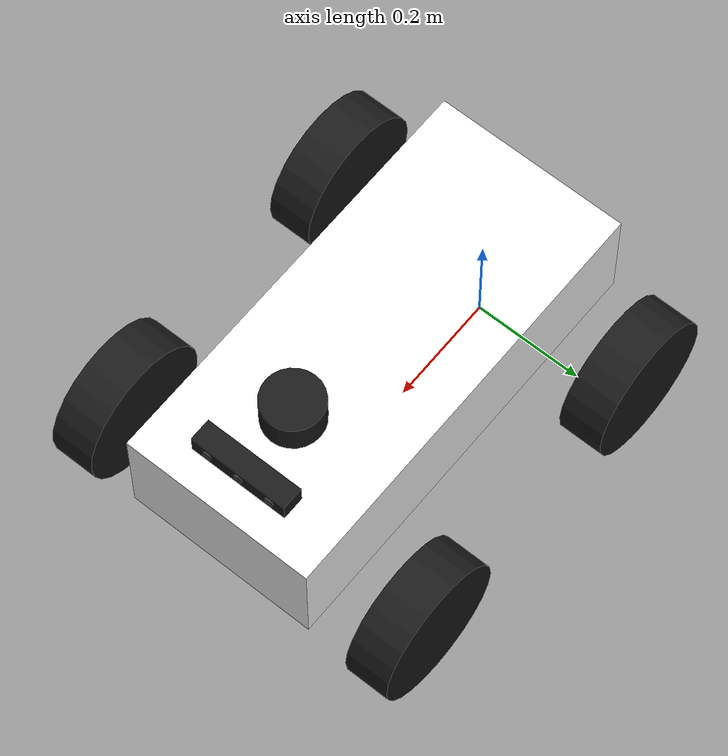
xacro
<?xml version="1.0" ?>
<robot name="rosbot_plus" xmlns:xacro="http://www.ros.org/wiki/xacro">
<!-- ROSbot-inspired rear-drive platform with front Ackermann steering,       -->
<!-- independent suspension, LS LiDAR approximation, RGB-D camera + IMU.                                      -->
<!-- All physical numbers live in params.xacro, each with a provenance tag -->
<!-- ([SPEC] / [DERIVED] / [EST] / [CALIB]). This file only assembles the  -->
<!-- kinematic tree; do not hard-code a dimension or a mass here.          -->

<!-- ========================== ARGUMENTS ================================ -->
<xacro:arg name="use_ros2_control" default="true"/>
<xacro:arg name="sim_mode" default="false"/>

<!-- LS LiDAR mount, estimated from the Roboworks product photograph.
     Keep livox_frame as a compatibility name for existing RViz configs. -->
<xacro:arg name="enable_lidar" default="true"/>
<xacro:arg name="enable_camera" default="true"/>
<xacro:arg name="imu_update_rate" default="200"/>
<xacro:arg name="lidar_tilt_deg" default="0"/>
<xacro:arg name="lidar_riser_m" default="0.025"/>
<xacro:property name="lidar_riser" value="$(arg lidar_riser_m)"/>
<xacro:arg name="lidar_x_offset_m" default="0.20"/>
<xacro:property name="lidar_x_offset" value="$(arg lidar_x_offset_m)"/>

<!-- Payload, swept by the section 5.1 campaign. Mass in kg; x/z locate it -->
<!-- relative to base_link, so the campaign can vary CoM height as well as -->
<!-- weight. payload_mass=0 instantiates no payload link at all.           -->
<!-- payload_z default puts the 0.3 m cube resting on the chassis roof     -->
<!-- (roof at ground_clearance + chassis_height = 0.319, plus half a cube).-->
<xacro:arg name="payload_mass" default="0.0"/>
<xacro:arg name="payload_x"    default="0.265"/>
<xacro:arg name="payload_z"    default="0.469"/>

<!-- ========================== INCLUDES ================================= -->
<xacro:include filename="$(find rosbot_plus_description)/urdf/params.xacro" />
<xacro:include filename="$(find rosbot_plus_description)/urdf/materials.xacro" />
<xacro:include filename="$(find rosbot_plus_description)/urdf/gazebo_classic_plugins.xacro" />

<xacro:if value="$(arg use_ros2_control)">
    <xacro:include filename="$(find rosbot_plus_description)/urdf/ros2_control.xacro" />
</xacro:if>

<!-- ========================== INERTIAS ================================= -->
<xacro:property name="chassis_ixx" value="${chassis_mass/12*(chassis_width*chassis_width+chassis_height*chassis_height)}"/>
<xacro:property name="chassis_iyy" value="${chassis_mass/12*(chassis_length*chassis_length+chassis_height*chassis_height)}"/>
<xacro:property name="chassis_izz" value="${chassis_mass/12*(chassis_length*chassis_length+chassis_width*chassis_width)}"/>
<xacro:property name="wheel_ixx" value="${wheel_mass/12*(3*wheel_radius*wheel_radius+wheel_width*wheel_width)}"/>
<xacro:property name="wheel_iyy" value="${wheel_mass*wheel_radius*wheel_radius/2}"/>

<!-- ========================== BASE FOOTPRINT =========================== -->
<link name="base_footprint"/>

<joint name="base_footprint_joint" type="fixed">
    <origin xyz="0 0 0" rpy="0 0 0"/>
    <parent link="base_footprint"/>
    <child link="base_link"/>
</joint>

<!-- ========================== CHASSIS ================================== -->
<link name="base_link">
    <!-- The inertial origin carries the CoM offset from params.xacro; the -->
    <!-- visual and collision boxes stay on the geometric centre. Keeping  -->
    <!-- them apart is what lets the descent-tipping behaviour be          -->
    <!-- calibrated without distorting the robot's outline.                -->
    <inertial>
        <origin xyz="${chassis_x + com_x_offset} 0 ${chassis_z + com_z_offset}" rpy="0 0 0"/>
        <mass value="${chassis_mass}"/>
        <inertia ixx="${chassis_ixx}" ixy="0.0" ixz="0.0"
                 iyy="${chassis_iyy}" iyz="0.0"
                 izz="${chassis_izz}"/>
    </inertial>
    <visual>
        <origin xyz="${chassis_x} 0 ${chassis_z}" rpy="0 0 0"/>
        <geometry>
            <box size="${chassis_length} ${chassis_width} ${chassis_height}"/>
        </geometry>
        <material name="white"/>
    </visual>
    <collision>
        <origin xyz="${chassis_x} 0 ${chassis_z}" rpy="0 0 0"/>
        <geometry>
            <box size="${chassis_length} ${chassis_width} ${chassis_height}"/>
        </geometry>
    </collision>
</link>

<!-- ========================== PAYLOAD ================================== -->
<!-- Instantiated only when a payload is actually commanded, so the        -->
<!-- unladen model stays exactly at the datasheet's 35.16 kg.              -->
<xacro:if value="${payload_mass > 0.0}">
    <link name="payload_link">
        <inertial>
            <mass value="${payload_mass}"/>
            <!-- Treated as a compact 0.3 m cube of uniform density: the -->
            <!-- campaign varies mass and height, not shape.             -->
            <inertia ixx="${payload_mass*0.015}" ixy="0" ixz="0"
                     iyy="${payload_mass*0.015}" iyz="0"
                     izz="${payload_mass*0.015}"/>
        </inertial>
        <visual>
            <geometry><box size="0.3 0.3 0.3"/></geometry>
            <material name="orange"/>
        </visual>
    </link>

    <joint name="payload_joint" type="fixed">
        <origin xyz="${payload_x} 0 ${payload_z}" rpy="0 0 0"/>
        <parent link="base_link"/>
        <child link="payload_link"/>
    </joint>
</xacro:if>

<!-- ========================== WHEEL + SUSPENSION MACRO ================= -->
<!-- Each wheel hangs off base_link through a passive prismatic            -->
<!-- "suspension" joint (vertical travel, spring+damper) then spins on a   -->
<!-- continuous joint on the resulting "knuckle" link. ros2_control only   -->
<!-- commands the spin joint; the suspension joint is left uncontrolled    -->
<!-- so gravity/contact and the spring/damper govern it, like a real       -->
<!-- independent suspension.                                               -->
<!-- The spring is also declared as a Gazebo Classic joint extension in    -->
<!-- gazebo_classic_plugins.xacro, because that is what ODE uses for this  -->
<!-- model. Keep the URDF dynamics attribute so non-Gazebo consumers still -->
<!-- see the intended stiffness.                                           -->
<xacro:macro name="wheel" params="prefix x_offset y_offset steering:=false">

    <link name="${prefix}_knuckle">
        <inertial>
            <mass value="${knuckle_mass}"/>
            <inertia ixx="${knuckle_mass*knuckle_size**2/6}" ixy="0" ixz="0"
                     iyy="${knuckle_mass*knuckle_size**2/6}" iyz="0"
                     izz="${knuckle_mass*knuckle_size**2/6}"/>
        </inertial>
    </link>

    <joint name="${prefix}_suspension_joint" type="prismatic">
        <parent link="base_link"/>
        <child link="${prefix}_knuckle"/>
        <origin xyz="${x_offset} ${y_offset} ${wheel_radius}" rpy="0 0 0"/>
        <axis xyz="0 0 1"/>
        <limit lower="${-suspension_travel}" upper="${suspension_travel}" effort="2000" velocity="2"/>
        <dynamics damping="${suspension_damping}" friction="0.0"
                  spring_stiffness="${suspension_stiffness}" spring_reference="0.0"/>
    </joint>

    <xacro:if value="${steering}">
      <link name="${prefix}_steering_link">
        <inertial>
          <mass value="0.2"/>
          <inertia ixx="0.0003" ixy="0" ixz="0" iyy="0.0003" iyz="0" izz="0.0003"/>
        </inertial>
      </link>
      <joint name="${prefix}_steering_joint" type="revolute">
        <parent link="${prefix}_knuckle"/><child link="${prefix}_steering_link"/>
        <axis xyz="0 0 1"/>
        <limit lower="-0.6" upper="0.6" effort="30" velocity="1.5"/>
        <dynamics damping="0.5" friction="0.0"/>
      </joint>
    </xacro:if>
    <link name="${prefix}_Link">
        <inertial>
            <mass value="${wheel_mass}"/>
            <inertia ixx="${wheel_ixx}" ixy="0.0" ixz="0.0"
                     iyy="${wheel_iyy}" iyz="0.0"
                     izz="${wheel_ixx}"/>
        </inertial>
        <visual>
            <origin xyz="0 0 0" rpy="${pi/2} 0 0"/>
            <geometry>
                <cylinder radius="${wheel_radius}" length="${wheel_width}"/>
            </geometry>
            <material name="black"/>
        </visual>
        <collision>
            <origin xyz="0 0 0" rpy="${pi/2} 0 0"/>
            <geometry>
                <cylinder radius="${wheel_radius}" length="${wheel_width}"/>
            </geometry>
        </collision>
    </link>

    <!-- effort is the peak (current-limited) wheel torque from            -->
    <!-- params.xacro, not an arbitrary large number: it is what stops the -->
    <!-- velocity-commanded wheel from climbing anything put in front of   -->
    <!-- it. velocity is the datasheet top speed with 10% headroom.        -->
    <joint name="${prefix}_Joint" type="continuous">
        <origin xyz="0 0 0" rpy="0 0 0"/>
        <parent link="${prefix + ('_steering_link' if steering else '_knuckle')}"/>
        <child link="${prefix}_Link"/>
        <axis xyz="0 1 0"/>
        <limit effort="${wheel_torque_peak}" velocity="${wheel_omega_max*1.1}"/>
        <dynamics damping="${wheel_joint_damping}" friction="${wheel_joint_friction}"/>
    </joint>
</xacro:macro>

<!-- Instantiate 4 wheels: rear axle at x=0 (base_link origin), front axle at x=wheelbase -->
<xacro:wheel prefix="RL" x_offset="0.0"          y_offset="${track_half}"/>
<xacro:wheel prefix="RR" x_offset="0.0"          y_offset="${-track_half}"/>
<xacro:wheel prefix="FL" x_offset="${wheelbase}" y_offset="${track_half}" steering="${True}"/>
<xacro:wheel prefix="FR" x_offset="${wheelbase}" y_offset="${-track_half}" steering="${True}"/>

<!-- ========================== SENSORS ================================== -->

<!-- LS LiDAR approximation; legacy frame name retained for compatibility. -->
<link name="livox_frame">
    <inertial>
        <mass value="${livox_mass}"/>
        <inertia ixx="1e-3" ixy="0" ixz="0" iyy="1e-3" iyz="0" izz="1e-3"/>
    </inertial>
    <visual>
        <origin xyz="0 0 0" rpy="0 0 0"/>
        <geometry>
            <cylinder radius="0.0525" length="0.06"/>
        </geometry>
        <material name="black"/>
    </visual>
    <collision>
        <origin xyz="0 0 0" rpy="0 0 0"/>
        <geometry>
            <cylinder radius="0.0525" length="0.06"/>
        </geometry>
    </collision>
</link>

<joint name="livox_joint" type="fixed">
    <origin xyz="${chassis_x + lidar_x_offset} 0
                 ${chassis_z + chassis_height/2 + 0.03 + lidar_riser}"
            rpy="0 ${radians($(arg lidar_tilt_deg))} 0"/>
    <parent link="base_link"/>
    <child link="livox_frame"/>
</joint>

<!-- IMU (kept as a separate link even though the Mid-360 has one built   -->
<!-- in, so the base IMU frame is independent of the lidar mount).        -->
<link name="imu_link">
    <inertial>
        <mass value="${imu_mass}"/>
        <inertia ixx="1e-5" ixy="0" ixz="0" iyy="1e-5" iyz="0" izz="1e-5"/>
    </inertial>
    <visual>
        <geometry><box size="0.03 0.03 0.01"/></geometry>
        <material name="dark_grey"/>
    </visual>
    <collision>
        <geometry><box size="0.03 0.03 0.01"/></geometry>
    </collision>
</link>

<joint name="imu_joint" type="fixed">
    <origin xyz="${chassis_x} 0 ${chassis_z}" rpy="0 0 0"/>
    <parent link="base_link"/>
    <child link="imu_link"/>
</joint>

<!-- Approximate Orbbec RGB-D housing and front-facing optical frame.
     Mount dimensions are estimates, not manufacturer CAD measurements. -->
<link name="camera_link">
  <inertial>
    <mass value="${camera_mass}"/>
    <inertia ixx="${camera_mass*(0.18**2+0.035**2)/12}" ixy="0" ixz="0"
             iyy="${camera_mass*(0.04**2+0.035**2)/12}" iyz="0"
             izz="${camera_mass*(0.04**2+0.18**2)/12}"/>
  </inertial>
  <visual>
    <geometry><box size="0.04 0.18 0.035"/></geometry>
    <material name="black"/>
  </visual>
  <collision><geometry><box size="0.04 0.18 0.035"/></geometry></collision>
</link>
<joint name="camera_joint" type="fixed">
  <parent link="base_link"/><child link="camera_link"/>
  <origin xyz="${chassis_x+0.31} 0 ${chassis_z+chassis_height/2+0.025}"/>
</joint>
<link name="camera_optical_frame"/>
<joint name="camera_optical_joint" type="fixed">
  <parent link="camera_link"/><child link="camera_optical_frame"/>
  <origin xyz="0.021 0 0" rpy="${-pi/2} 0 ${-pi/2}"/>
</joint>
<xacro:macro name="camera_lens" params="y">
  <link name="camera_lens_${y}">
    <visual>
      <origin rpy="0 ${pi/2} 0"/>
      <geometry><cylinder radius="0.008" length="0.003"/></geometry>
      <material name="dark_grey"/>
    </visual>
  </link>
  <joint name="camera_lens_joint_${y}" type="fixed">
    <parent link="camera_link"/><child link="camera_lens_${y}"/>
    <origin xyz="0.021 ${y} 0"/>
  </joint>
</xacro:macro>
<xacro:camera_lens y="0.06"/>
<xacro:camera_lens y="0.0"/>
<xacro:camera_lens y="-0.06"/>
</robot>

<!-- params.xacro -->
<robot xmlns:xacro="http://www.ros.org/wiki/xacro">
<!-- ROSbot Plus 4WD-IS - single source of truth for physical parameters.  -->
<!-- Every value carries a provenance tag. Nothing in this project should  -->
<!-- silently mix a datasheet number with a guess:                         -->
<!--   [SPEC]   Roboworks ROSbot Plus datasheet (roboworks.net, 4WD-IS).   -->
<!--   [DERIVED] Computed from [SPEC] values; the derivation is written    -->
<!--            out next to it so a reviewer can check it.                 -->
<!--   [EST]    Engineering estimate, no source. Replace from the vendor   -->
<!--            STP/URDF (shipped with the robot) as soon as available.    -->
<!--   [CALIB]  Free parameter of the sim-to-real calibration of the       -->
<!--            project doc section 5.2 (max climbable step, unladen and   -->
<!--            loaded, up and down). Fitted, not guessed.                 -->
<!-- The feasibility surface of section 5.1 is a purely physical result,   -->
<!-- so the credibility of the whole project rests on this file.           -->

<!-- ===================== DATASHEET REFERENCE =========================== -->
<!-- [SPEC] Overall size      L 0.766  W 0.671  H 0.319 m                  -->
<!-- [SPEC] Mass, unladen     35.16 kg                                     -->
<!-- [SPEC] Wheels            solid rubber, 254 mm diameter                -->
<!-- [SPEC] Motors            MD36, 100 W brushed DC, 1:18 reduction, 24 V -->
<!-- [SPEC] Max speed         2.33 m/s                                     -->
<!-- [SPEC] Max payload       22 kg (45 kg on the HD variant)              -->
<!-- [SPEC] Max slope         30 deg                                       -->

<!-- ========================== WHEELS ==================================== -->
<xacro:property name="wheel_radius" value="0.127"/>   <!-- [SPEC] 254 mm diameter -->
<xacro:property name="wheel_width"  value="0.08"/>    <!-- [EST] see track check below -->
<xacro:property name="wheel_mass"   value="2.5"/>     <!-- [EST] solid rubber tyre + hub -->

<!-- ========================== TRACK / WHEELBASE ========================= -->
<!-- Cross-check that anchors the lateral geometry to the datasheet:       -->
<!--   track + wheel_width = 0.59 + 0.08 = 0.67 m  vs  [SPEC] W = 0.671 m  -->
<!-- so track_half and wheel_width are jointly confirmed by the overall    -->
<!-- width. The wheelbase has no such anchor and stays an estimate.        -->
<xacro:property name="track_half" value="0.295"/>     <!-- [DERIVED] half of 0.59 -->
<xacro:property name="wheelbase"  value="0.53"/>      <!-- [EST] no datasheet anchor -->

<!-- ========================== CHASSIS =================================== -->
<xacro:property name="chassis_length" value="0.766"/> <!-- [SPEC] overall L -->
<xacro:property name="chassis_width"  value="0.35"/>  <!-- [EST] body only, wheels are outboard -->
<xacro:property name="overall_height" value="0.319"/> <!-- [SPEC] overall H -->

<!-- Ground clearance is the hard geometric ceiling on climbable step      -->
<!-- height: the belly grounds out before the wheel ever tops the step, so -->
<!-- this single number bounds the h axis of the whole section 5.1 sweep.  -->
<!-- The datasheet does not give it directly.                              -->
<!-- Rather than guessing clearance and body height independently, the     -->
<!-- vertical stack-up is forced to close on the datasheet overall height, -->
<!-- exactly as the mass budget closes on the datasheet total mass. That   -->
<!-- leaves clearance as the ONLY free parameter of the vertical geometry, -->
<!-- and 0.12 m places the belly just below the 0.127 m axle line, which   -->
<!-- is the conventional proportion for a box-chassis AMR with outboard    -->
<!-- wheels. Refine from the vendor STP/URDF when convenient; it moves the -->
<!-- predicted maximum step height and nothing else.                       -->
<xacro:property name="ground_clearance" value="0.12"/>   <!-- [EST] only free vertical param -->
<xacro:property name="chassis_height"
    value="${overall_height - ground_clearance}"/>       <!-- [DERIVED] 0.319 - 0.12 = 0.199 -->

<!-- Body box placement. base_link sits on the ground plane at the rear    -->
<!-- axle, so the box centre is offset forward and up. The body is assumed -->
<!-- centred on the wheelbase, which leaves overhangs of                   -->
<!-- (0.766 - 0.53)/2 = 0.118 m front and rear - a plausible proportion.   -->
<xacro:property name="chassis_x" value="${wheelbase/2}"/> <!-- [DERIVED] centred on wheelbase -->
<xacro:property name="chassis_z" value="${ground_clearance + chassis_height/2}"/>  <!-- [DERIVED] -->

<!-- Geometric ceiling on step height implied by the above, useful when    -->
<!-- choosing the sweep range: the belly grounds at h = 0.12 m and the     -->
<!-- wheel cannot roll onto anything taller than its own radius 0.127 m    -->
<!-- without help, so a sweep spanning 0 to 0.15 m brackets the limit.     -->

<!-- Centre of mass. Tipping in descent is a named failure mode of the     -->
<!-- project (doc section 2), and it is governed by CoM height, not by the -->
<!-- box centroid. The 24 V LFP battery sits low, so the real CoM is below -->
<!-- the geometric centre; the offset is applied to the inertial origin    -->
<!-- only, never to the visual/collision boxes.                            -->
<xacro:property name="com_z_offset" value="-0.03"/>   <!-- [EST] battery low in the frame -->
<xacro:property name="com_x_offset" value="0.0"/>     <!-- [EST] assumed longitudinally centred -->

<!-- ========================== SENSORS =================================== -->
<xacro:property name="livox_mass" value="0.265"/>     <!-- [SPEC] Mid-360 datasheet -->
<xacro:property name="camera_mass" value="0.25"/> <!-- [EST] camera housing -->
<xacro:property name="imu_mass"   value="0.05"/>      <!-- [EST] -->

<xacro:property name="imu_update_rate" value="$(arg imu_update_rate)"/>
<xacro:property name="knuckle_size" value="0.10"/> <!-- [EST] equivalent upright envelope -->
<xacro:property name="knuckle_mass" value="0.6"/>     <!-- [EST] unsprung suspension upright -->

<!-- ========================== MASS BUDGET =============================== -->
<!-- The one mass that is actually measured is the total. So the chassis   -->
<!-- mass is DERIVED as the remainder, which keeps the model's total equal -->
<!-- to the datasheet no matter how the component estimates are later      -->
<!-- refined. Never set chassis_mass directly.                             -->
<xacro:property name="total_mass_unladen" value="35.16"/>  <!-- [SPEC] -->
<xacro:property name="chassis_mass"
    value="${total_mass_unladen - 4*(wheel_mass + knuckle_mass) - livox_mass - imu_mass - camera_mass - 0.4}"/>
<!-- [DERIVED] 35.16 - 4*(2.5+0.6) - 0.265 - 0.05 = 22.445 kg -->

<!-- Sprung mass = everything the springs actually carry (chassis and what -->
<!-- is bolted to it). Wheels and knuckles are unsprung.                   -->
<xacro:property name="sprung_mass" value="${chassis_mass + livox_mass + imu_mass + camera_mass}"/>
<xacro:property name="sprung_corner_mass" value="${sprung_mass/4}"/>

<!-- ========================== PAYLOAD =================================== -->
<!-- The payload is the primary swept variable of the decisive experiment  -->
<!-- (doc section 5.1: same step height, opposite decisions under load).   -->
<!-- Both its mass and its height matter: a high payload raises the CoM    -->
<!-- and promotes tipping, which is a different failure mode from the      -->
<!-- traction loss caused by its weight alone. Swept from the launch file, -->
<!-- never edited here.                                                    -->
<xacro:property name="payload_mass" value="$(arg payload_mass)"/>
<xacro:property name="payload_x"    value="$(arg payload_x)"/>
<xacro:property name="payload_z"    value="$(arg payload_z)"/>

<!-- ========================== SUSPENSION =============================== -->
<!-- Independent suspension, modelled as a vertical prismatic travel with  -->
<!-- a spring/damper.                                                      -->
<!-- MODELLING CAVEAT: real independent suspensions on this class of AMR   -->
<!-- are usually trailing arms (revolute), not vertical sliders. A trailing -->
<!-- arm changes how the wheel meets a step edge, so this simplification   -->
<!-- is itself a calibration target. Revisit once the vendor STP shows the -->
<!-- actual linkage.                                                       -->
<xacro:property name="suspension_travel" value="0.03"/>       <!-- [EST] +/- 30 mm -->
<xacro:property name="suspension_stiffness" value="6000"/>    <!-- [CALIB] N/m per wheel -->

<!-- MEASURED, NOT DECLARED. The value above is what reaches the SDF, but  -->
<!-- the assembled robot behaves as though the springs were ~5500 N/m, a   -->
<!-- systematic 8-10% softer, identically at 0 kg and at 22 kg payload.    -->
<!-- This is NOT a mass bookkeeping error: the four measured joint forces  -->
<!-- sum to 438.6 N against a sprung weight of 438.9 N. Nor is it a DART   -->
<!-- spring or timestep artefact: an isolated single-joint rig reproduces  -->
<!-- -mg/k to 0.1% for damping from 50 to 2000 N.s/m and timesteps from    -->
<!-- 1 ms to 0.1 ms. The cause is in the assembled multi-body model and is -->
<!-- still open.                                                           -->
<!-- Why this does not block the project: suspension_stiffness is a        -->
<!-- [CALIB] parameter, fitted so that the SIMULATED ride height and step  -->
<!-- behaviour match the REAL robot. A constant offset between declared    -->
<!-- and effective stiffness is absorbed by that fit. What matters is that -->
<!-- it is measured rather than assumed, so `ros2 run                      -->
<!-- rosbot_plus_description check_physics` reports the effective rate on  -->
<!-- every run instead of letting it drift silently.                       -->

<!-- Static sag = m_corner*g/k = 5.69*9.81/6000 = 9.3 mm unladen, and      -->
<!-- 18.3 mm with the full 22 kg payload. Both stay inside the 30 mm       -->
<!-- travel, and the difference between them is exactly the load-dependent -->
<!-- loss of ground clearance the capability model of C1 has to capture.   -->

<!-- Damping is expressed as a ratio of critical damping rather than as a  -->
<!-- raw N.s/m, so it stays physically meaningful when k or the mass       -->
<!-- budget is refit. c = 2*zeta*sqrt(k*m_corner).                         -->
<!-- zeta = 0.7 is slightly underdamped: enough to kill the rebound that   -->
<!-- would otherwise cause spurious tipping after a step impact, without   -->
<!-- locking the suspension solid.                                         -->
<xacro:property name="suspension_damping_ratio" value="0.7"/> <!-- [CALIB] -->
<xacro:property name="suspension_damping"
    value="${2*suspension_damping_ratio*sqrt(suspension_stiffness*sprung_corner_mass)}"/>
<!-- [DERIVED] 2*0.7*sqrt(6000*5.69) = 259 N.s/m -->

<!-- ========================== DRIVETRAIN ================================ -->
<!-- Wheel torque, derived twice from independent datasheet figures.       -->
<!--   Route A, from power and top speed:                                  -->
<!--     w_max = v_max/r = 2.33/0.127            = 18.35 rad/s             -->
<!--     tau   = P/w_max = 100/18.35             = 5.45 N.m per wheel      -->
<!--   Route B, from the quoted 30 deg maximum slope:                      -->
<!--     F = m*g*sin(30) = 35.16*9.81*0.5        = 172.5 N                 -->
<!--     tau = (F/4)*r   = 43.1*0.127            = 5.48 N.m per wheel      -->
<!-- The two routes agree to 0.5%, which is strong evidence that 5.45 N.m  -->
<!-- is the real continuous capability rather than a coincidence. The      -->
<!-- previous URDF used effort=50 N.m, roughly 9x this, which would have   -->
<!-- let the simulated robot climb essentially anything and invalidated    -->
<!-- the entire feasibility surface.                                       -->
<xacro:property name="motor_power_w"  value="100.0"/>   <!-- [SPEC] per motor -->
<xacro:property name="max_speed_mps"  value="2.33"/>    <!-- [SPEC] -->
<xacro:property name="wheel_omega_max" value="${max_speed_mps/wheel_radius}"/>
<xacro:property name="wheel_torque_cont" value="${motor_power_w/wheel_omega_max}"/>

<!-- Climbing a step is a sub-second transient, so what bounds it is the   -->
<!-- peak (current-limited) torque, not the continuous rating. The         -->
<!-- multiplier is unknown without a motor curve or a current-limit        -->
<!-- setting, and 3x is a conventional value for a brushed DC drive.       -->
<!-- THIS IS THE PRIMARY CALIBRATION KNOB. The measured max climbable step -->
<!-- height (doc section 5.2) identifies it almost on its own: it is the   -->
<!-- one parameter that moves the climb limit without moving anything else -->
<!-- that is independently measurable.                                     -->
<xacro:property name="wheel_torque_peak_ratio" value="3.0"/>  <!-- [CALIB] -->
<xacro:property name="wheel_torque_peak"
    value="${wheel_torque_cont*wheel_torque_peak_ratio}"/>
<!-- [DERIVED] 5.45 * 3.0 = 16.35 N.m per wheel -->

<!-- Small viscous/Coulomb losses in the 1:18 gearbox, referred to the     -->
<!-- wheel. Kept low so they do not silently eat into the torque budget.   -->
<xacro:property name="wheel_joint_damping"  value="0.05"/>   <!-- [EST] -->
<xacro:property name="wheel_joint_friction" value="0.05"/>   <!-- [EST] -->

<!-- ========================== TYRE FRICTION ============================= -->
<!-- The 30 deg slope spec is itself a friction measurement: climbing it   -->
<!-- without slipping requires mu >= tan(30) = 0.577. So mu is bounded     -->
<!-- below by the datasheet, and 1.0 (solid rubber on concrete) leaves a   -->
<!-- reasonable margin above that floor. The previous value of 1.5 was     -->
<!-- optimistic for rubber on concrete.                                    -->
<!-- mu2 (lateral) must stay well below mu or a 4WD skid-steer cannot      -->
<!-- rotate at all.                                                        -->
<!-- Both are confirmed by the traction test of doc section 5.3.           -->
<xacro:property name="wheel_mu"  value="1.0"/>   <!-- [CALIB] floor 0.577 from 30 deg spec -->
<xacro:property name="wheel_mu2" value="0.7"/>   <!-- [CALIB] lateral, enables skid-steer -->

</robot>

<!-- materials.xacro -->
<robot name="rosbot_plus" xmlns:xacro="http://www.ros.org/wiki/xacro">

<material name="white">
  <color rgba="1.0 1.0 1.0 1.0"/>
</material>

<material name="black">
  <color rgba="0.1 0.1 0.1 1.0"/>
</material>

<material name="dark_grey">
  <color rgba="0.3 0.3 0.3 1.0"/>
</material>

<material name="red">
  <color rgba="0.8 0.0 0.0 1.0"/>
</material>

<!-- Payload block: deliberately loud, so a campaign screenshot or a replay
     immediately shows whether the run was laden or unladen. -->
<material name="orange">
  <color rgba="0.95 0.5 0.1 1.0"/>
</material>

</robot>
